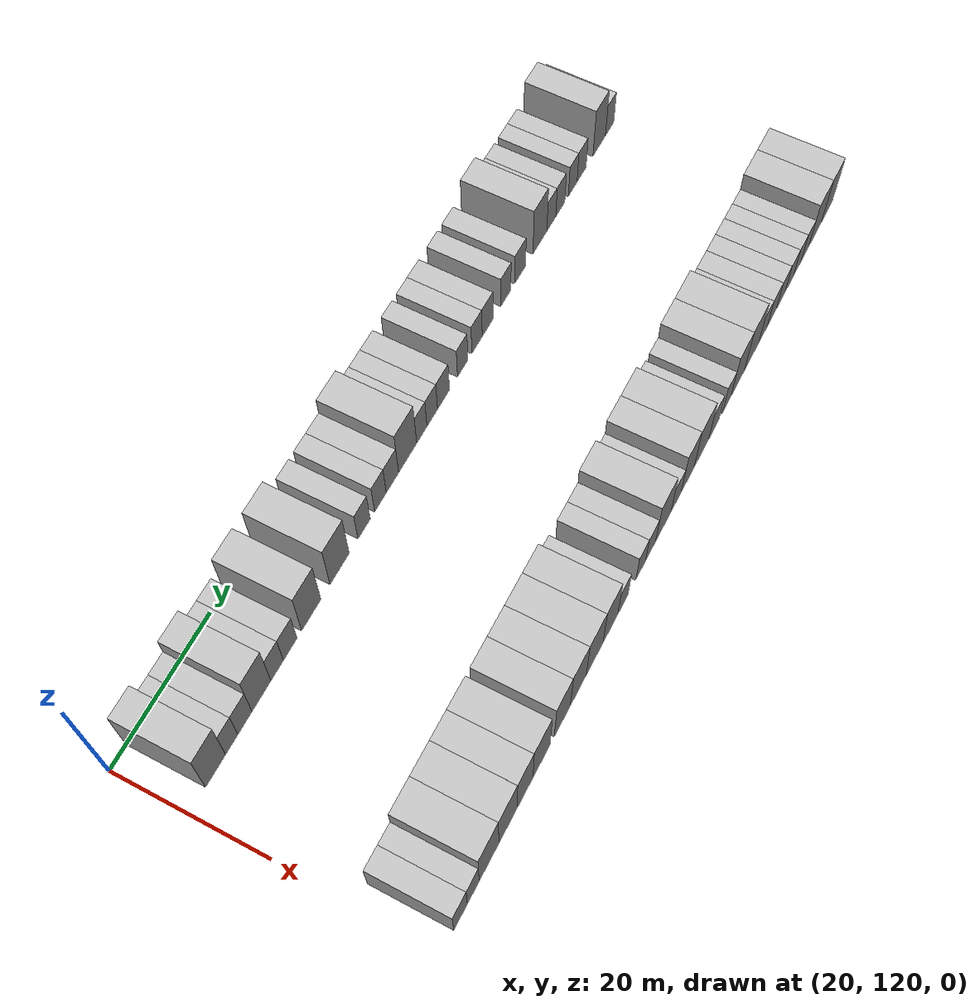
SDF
<sdf version="1.6">
 <world name="default">
  <model name="building_85">
   <static>1</static>
   <pose>25.0000 125.1959 0 0.000000 0.000000 0.000000</pose>
   <link name="link">
    <pose>0 0 4.50 0 0 0</pose>
    <collision name="collision"><geometry><box><size>10.0000 3.9432 9.0000</size></box></geometry></collision>
    <visual name="visual">
     <cast_shadows>0</cast_shadows>
     <geometry><box><size>10.0000 3.9432 9.0000</size></box></geometry>
     <material>
      <script>
       <uri>model://HANNAS_wall/materials/scripts</uri>
       <uri>model://HANNAS_wall/materials/textures</uri>
       <name>vrc/HANNAS_wall</name>
      </script>
     </material>
    </visual>
   </link>
  </model>
  <model name="building_86">
   <static>1</static>
   <pose>25.0000 128.3918 0 0.000000 0.000000 0.000000</pose>
   <link name="link">
    <pose>0 0 3.00 0 0 0</pose>
    <collision name="collision"><geometry><box><size>10.0000 2.4485 6.0000</size></box></geometry></collision>
    <visual name="visual">
     <cast_shadows>0</cast_shadows>
     <geometry><box><size>10.0000 2.4485 6.0000</size></box></geometry>
     <material>
      <script>
       <uri>model://HANNAS_wall/materials/scripts</uri>
       <uri>model://HANNAS_wall/materials/textures</uri>
       <name>vrc/HANNAS_wall</name>
      </script>
     </material>
    </visual>
   </link>
  </model>
  <model name="building_87">
   <static>1</static>
   <pose>25.0000 131.0483 0 0.000000 0.000000 0.000000</pose>
   <link name="link">
    <pose>0 0 3.00 0 0 0</pose>
    <collision name="collision"><geometry><box><size>10.0000 2.8646 6.0000</size></box></geometry></collision>
    <visual name="visual">
     <cast_shadows>0</cast_shadows>
     <geometry><box><size>10.0000 2.8646 6.0000</size></box></geometry>
     <material>
      <script>
       <uri>model://HANNAS_wall/materials/scripts</uri>
       <uri>model://HANNAS_wall/materials/textures</uri>
       <name>vrc/HANNAS_wall</name>
      </script>
     </material>
    </visual>
   </link>
  </model>
  <model name="building_88">
   <static>1</static>
   <pose>25.0000 134.4222 0 0.000000 0.000000 0.000000</pose>
   <link name="link">
    <pose>0 0 4.50 0 0 0</pose>
    <collision name="collision"><geometry><box><size>10.0000 3.8834 9.0000</size></box></geometry></collision>
    <visual name="visual">
     <cast_shadows>0</cast_shadows>
     <geometry><box><size>10.0000 3.8834 9.0000</size></box></geometry>
     <material>
      <script>
       <uri>model://HANNAS_wall/materials/scripts</uri>
       <uri>model://HANNAS_wall/materials/textures</uri>
       <name>vrc/HANNAS_wall</name>
      </script>
     </material>
    </visual>
   </link>
  </model>
  <model name="building_89">
   <static>1</static>
   <pose>25.0000 137.6720 0 0.000000 0.000000 0.000000</pose>
   <link name="link">
    <pose>0 0 3.00 0 0 0</pose>
    <collision name="collision"><geometry><box><size>10.0000 2.6161 6.0000</size></box></geometry></collision>
    <visual name="visual">
     <cast_shadows>0</cast_shadows>
     <geometry><box><size>10.0000 2.6161 6.0000</size></box></geometry>
     <material>
      <script>
       <uri>model://HANNAS_wall/materials/scripts</uri>
       <uri>model://HANNAS_wall/materials/textures</uri>
       <name>vrc/HANNAS_wall</name>
      </script>
     </material>
    </visual>
   </link>
  </model>
  <model name="building_90">
   <static>1</static>
   <pose>25.0000 140.4186 0 0.000000 0.000000 0.000000</pose>
   <link name="link">
    <pose>0 0 3.00 0 0 0</pose>
    <collision name="collision"><geometry><box><size>10.0000 2.8770 6.0000</size></box></geometry></collision>
    <visual name="visual">
     <cast_shadows>0</cast_shadows>
     <geometry><box><size>10.0000 2.8770 6.0000</size></box></geometry>
     <material>
      <script>
       <uri>model://HANNAS_wall/materials/scripts</uri>
       <uri>model://HANNAS_wall/materials/textures</uri>
       <name>vrc/HANNAS_wall</name>
      </script>
     </material>
    </visual>
   </link>
  </model>
  <model name="building_91">
   <static>1</static>
   <pose>25.0000 144.9298 0 0.000000 0.000000 0.000000</pose>
   <link name="link">
    <pose>0 0 4.50 0 0 0</pose>
    <collision name="collision"><geometry><box><size>10.0000 4.1455 9.0000</size></box></geometry></collision>
    <visual name="visual">
     <cast_shadows>0</cast_shadows>
     <geometry><box><size>10.0000 4.1455 9.0000</size></box></geometry>
     <material>
      <script>
       <uri>model://HANNAS_wall/materials/scripts</uri>
       <uri>model://HANNAS_wall/materials/textures</uri>
       <name>vrc/HANNAS_wall</name>
      </script>
     </material>
    </visual>
   </link>
  </model>
  <model name="building_92">
   <static>1</static>
   <pose>25.0000 151.1373 0 0.000000 0.000000 0.000000</pose>
   <link name="link">
    <pose>0 0 4.50 0 0 0</pose>
    <collision name="collision"><geometry><box><size>10.0000 4.2694 9.0000</size></box></geometry></collision>
    <visual name="visual">
     <cast_shadows>0</cast_shadows>
     <geometry><box><size>10.0000 4.2694 9.0000</size></box></geometry>
     <material>
      <script>
       <uri>model://HANNAS_wall/materials/scripts</uri>
       <uri>model://HANNAS_wall/materials/textures</uri>
       <name>vrc/HANNAS_wall</name>
      </script>
     </material>
    </visual>
   </link>
  </model>
  <model name="building_93">
   <static>1</static>
   <pose>25.0000 156.6735 0 0.000000 0.000000 0.000000</pose>
   <link name="link">
    <pose>0 0 3.00 0 0 0</pose>
    <collision name="collision"><geometry><box><size>10.0000 2.8031 6.0000</size></box></geometry></collision>
    <visual name="visual">
     <cast_shadows>0</cast_shadows>
     <geometry><box><size>10.0000 2.8031 6.0000</size></box></geometry>
     <material>
      <script>
       <uri>model://HANNAS_wall/materials/scripts</uri>
       <uri>model://HANNAS_wall/materials/textures</uri>
       <name>vrc/HANNAS_wall</name>
      </script>
     </material>
    </visual>
   </link>
  </model>
  <model name="building_94">
   <static>1</static>
   <pose>25.0000 160.4245 0 0.000000 0.000000 0.000000</pose>
   <link name="link">
    <pose>0 0 3.00 0 0 0</pose>
    <collision name="collision"><geometry><box><size>10.0000 2.6990 6.0000</size></box></geometry></collision>
    <visual name="visual">
     <cast_shadows>0</cast_shadows>
     <geometry><box><size>10.0000 2.6990 6.0000</size></box></geometry>
     <material>
      <script>
       <uri>model://HANNAS_wall/materials/scripts</uri>
       <uri>model://HANNAS_wall/materials/textures</uri>
       <name>vrc/HANNAS_wall</name>
      </script>
     </material>
    </visual>
   </link>
  </model>
  <model name="building_95">
   <static>1</static>
   <pose>25.0000 163.2224 0 0.000000 0.000000 0.000000</pose>
   <link name="link">
    <pose>0 0 3.00 0 0 0</pose>
    <collision name="collision"><geometry><box><size>10.0000 2.8968 6.0000</size></box></geometry></collision>
    <visual name="visual">
     <cast_shadows>0</cast_shadows>
     <geometry><box><size>10.0000 2.8968 6.0000</size></box></geometry>
     <material>
      <script>
       <uri>model://HANNAS_wall/materials/scripts</uri>
       <uri>model://HANNAS_wall/materials/textures</uri>
       <name>vrc/HANNAS_wall</name>
      </script>
     </material>
    </visual>
   </link>
  </model>
  <model name="building_96">
   <static>1</static>
   <pose>25.0000 166.8299 0 0.000000 0.000000 0.000000</pose>
   <link name="link">
    <pose>0 0 4.50 0 0 0</pose>
    <collision name="collision"><geometry><box><size>10.0000 4.3183 9.0000</size></box></geometry></collision>
    <visual name="visual">
     <cast_shadows>0</cast_shadows>
     <geometry><box><size>10.0000 4.3183 9.0000</size></box></geometry>
     <material>
      <script>
       <uri>model://HANNAS_wall/materials/scripts</uri>
       <uri>model://HANNAS_wall/materials/textures</uri>
       <name>vrc/HANNAS_wall</name>
      </script>
     </material>
    </visual>
   </link>
  </model>
  <model name="building_97">
   <static>1</static>
   <pose>25.0000 170.2335 0 0.000000 0.000000 0.000000</pose>
   <link name="link">
    <pose>0 0 3.00 0 0 0</pose>
    <collision name="collision"><geometry><box><size>10.0000 2.4889 6.0000</size></box></geometry></collision>
    <visual name="visual">
     <cast_shadows>0</cast_shadows>
     <geometry><box><size>10.0000 2.4889 6.0000</size></box></geometry>
     <material>
      <script>
       <uri>model://HANNAS_wall/materials/scripts</uri>
       <uri>model://HANNAS_wall/materials/textures</uri>
       <name>vrc/HANNAS_wall</name>
      </script>
     </material>
    </visual>
   </link>
  </model>
  <model name="building_98">
   <static>1</static>
   <pose>25.0000 172.7696 0 0.000000 0.000000 0.000000</pose>
   <link name="link">
    <pose>0 0 3.00 0 0 0</pose>
    <collision name="collision"><geometry><box><size>10.0000 2.5834 6.0000</size></box></geometry></collision>
    <visual name="visual">
     <cast_shadows>0</cast_shadows>
     <geometry><box><size>10.0000 2.5834 6.0000</size></box></geometry>
     <material>
      <script>
       <uri>model://HANNAS_wall/materials/scripts</uri>
       <uri>model://HANNAS_wall/materials/textures</uri>
       <name>vrc/HANNAS_wall</name>
      </script>
     </material>
    </visual>
   </link>
  </model>
  <model name="building_99">
   <static>1</static>
   <pose>25.0000 175.5461 0 0.000000 0.000000 0.000000</pose>
   <link name="link">
    <pose>0 0 3.00 0 0 0</pose>
    <collision name="collision"><geometry><box><size>10.0000 2.9696 6.0000</size></box></geometry></collision>
    <visual name="visual">
     <cast_shadows>0</cast_shadows>
     <geometry><box><size>10.0000 2.9696 6.0000</size></box></geometry>
     <material>
      <script>
       <uri>model://HANNAS_wall/materials/scripts</uri>
       <uri>model://HANNAS_wall/materials/textures</uri>
       <name>vrc/HANNAS_wall</name>
      </script>
     </material>
    </visual>
   </link>
  </model>
  <model name="building_100">
   <static>1</static>
   <pose>25.0000 180.3489 0 0.000000 0.000000 0.000000</pose>
   <link name="link">
    <pose>0 0 3.00 0 0 0</pose>
    <collision name="collision"><geometry><box><size>10.0000 2.6359 6.0000</size></box></geometry></collision>
    <visual name="visual">
     <cast_shadows>0</cast_shadows>
     <geometry><box><size>10.0000 2.6359 6.0000</size></box></geometry>
     <material>
      <script>
       <uri>model://HANNAS_wall/materials/scripts</uri>
       <uri>model://HANNAS_wall/materials/textures</uri>
       <name>vrc/HANNAS_wall</name>
      </script>
     </material>
    </visual>
   </link>
  </model>
  <model name="building_101">
   <static>1</static>
   <pose>25.0000 184.0029 0 0.000000 0.000000 0.000000</pose>
   <link name="link">
    <pose>0 0 3.00 0 0 0</pose>
    <collision name="collision"><geometry><box><size>10.0000 2.6721 6.0000</size></box></geometry></collision>
    <visual name="visual">
     <cast_shadows>0</cast_shadows>
     <geometry><box><size>10.0000 2.6721 6.0000</size></box></geometry>
     <material>
      <script>
       <uri>model://HANNAS_wall/materials/scripts</uri>
       <uri>model://HANNAS_wall/materials/textures</uri>
       <name>vrc/HANNAS_wall</name>
      </script>
     </material>
    </visual>
   </link>
  </model>
  <model name="building_102">
   <static>1</static>
   <pose>25.0000 186.7661 0 0.000000 0.000000 0.000000</pose>
   <link name="link">
    <pose>0 0 3.00 0 0 0</pose>
    <collision name="collision"><geometry><box><size>10.0000 2.8544 6.0000</size></box></geometry></collision>
    <visual name="visual">
     <cast_shadows>0</cast_shadows>
     <geometry><box><size>10.0000 2.8544 6.0000</size></box></geometry>
     <material>
      <script>
       <uri>model://HANNAS_wall/materials/scripts</uri>
       <uri>model://HANNAS_wall/materials/textures</uri>
       <name>vrc/HANNAS_wall</name>
      </script>
     </material>
    </visual>
   </link>
  </model>
  <model name="building_103">
   <static>1</static>
   <pose>25.0000 191.5393 0 0.000000 0.000000 0.000000</pose>
   <link name="link">
    <pose>0 0 3.00 0 0 0</pose>
    <collision name="collision"><geometry><box><size>10.0000 2.6919 6.0000</size></box></geometry></collision>
    <visual name="visual">
     <cast_shadows>0</cast_shadows>
     <geometry><box><size>10.0000 2.6919 6.0000</size></box></geometry>
     <material>
      <script>
       <uri>model://HANNAS_wall/materials/scripts</uri>
       <uri>model://HANNAS_wall/materials/textures</uri>
       <name>vrc/HANNAS_wall</name>
      </script>
     </material>
    </visual>
   </link>
  </model>
  <model name="building_104">
   <static>1</static>
   <pose>25.0000 195.3610 0 0.000000 0.000000 0.000000</pose>
   <link name="link">
    <pose>0 0 3.00 0 0 0</pose>
    <collision name="collision"><geometry><box><size>10.0000 2.9515 6.0000</size></box></geometry></collision>
    <visual name="visual">
     <cast_shadows>0</cast_shadows>
     <geometry><box><size>10.0000 2.9515 6.0000</size></box></geometry>
     <material>
      <script>
       <uri>model://HANNAS_wall/materials/scripts</uri>
       <uri>model://HANNAS_wall/materials/textures</uri>
       <name>vrc/HANNAS_wall</name>
      </script>
     </material>
    </visual>
   </link>
  </model>
  <model name="building_105">
   <static>1</static>
   <pose>25.0000 200.7518 0 0.000000 0.000000 0.000000</pose>
   <link name="link">
    <pose>0 0 4.50 0 0 0</pose>
    <collision name="collision"><geometry><box><size>10.0000 3.8301 9.0000</size></box></geometry></collision>
    <visual name="visual">
     <cast_shadows>0</cast_shadows>
     <geometry><box><size>10.0000 3.8301 9.0000</size></box></geometry>
     <material>
      <script>
       <uri>model://HANNAS_wall/materials/scripts</uri>
       <uri>model://HANNAS_wall/materials/textures</uri>
       <name>vrc/HANNAS_wall</name>
      </script>
     </material>
    </visual>
   </link>
  </model>
  <model name="building_106">
   <static>1</static>
   <pose>25.0000 203.9179 0 0.000000 0.000000 0.000000</pose>
   <link name="link">
    <pose>0 0 3.00 0 0 0</pose>
    <collision name="collision"><geometry><box><size>10.0000 2.5021 6.0000</size></box></geometry></collision>
    <visual name="visual">
     <cast_shadows>0</cast_shadows>
     <geometry><box><size>10.0000 2.5021 6.0000</size></box></geometry>
     <material>
      <script>
       <uri>model://HANNAS_wall/materials/scripts</uri>
       <uri>model://HANNAS_wall/materials/textures</uri>
       <name>vrc/HANNAS_wall</name>
      </script>
     </material>
    </visual>
   </link>
  </model>
  <model name="building_107">
   <static>1</static>
   <pose>25.0000 206.4451 0 0.000000 0.000000 0.000000</pose>
   <link name="link">
    <pose>0 0 3.00 0 0 0</pose>
    <collision name="collision"><geometry><box><size>10.0000 2.5524 6.0000</size></box></geometry></collision>
    <visual name="visual">
     <cast_shadows>0</cast_shadows>
     <geometry><box><size>10.0000 2.5524 6.0000</size></box></geometry>
     <material>
      <script>
       <uri>model://HANNAS_wall/materials/scripts</uri>
       <uri>model://HANNAS_wall/materials/textures</uri>
       <name>vrc/HANNAS_wall</name>
      </script>
     </material>
    </visual>
   </link>
  </model>
  <model name="building_108">
   <static>1</static>
   <pose>25.0000 209.9662 0 0.000000 0.000000 0.000000</pose>
   <link name="link">
    <pose>0 0 3.00 0 0 0</pose>
    <collision name="collision"><geometry><box><size>10.0000 2.4898 6.0000</size></box></geometry></collision>
    <visual name="visual">
     <cast_shadows>0</cast_shadows>
     <geometry><box><size>10.0000 2.4898 6.0000</size></box></geometry>
     <material>
      <script>
       <uri>model://HANNAS_wall/materials/scripts</uri>
       <uri>model://HANNAS_wall/materials/textures</uri>
       <name>vrc/HANNAS_wall</name>
      </script>
     </material>
    </visual>
   </link>
  </model>
  <model name="building_109">
   <static>1</static>
   <pose>25.0000 212.5157 0 0.000000 0.000000 0.000000</pose>
   <link name="link">
    <pose>0 0 3.00 0 0 0</pose>
    <collision name="collision"><geometry><box><size>10.0000 2.6093 6.0000</size></box></geometry></collision>
    <visual name="visual">
     <cast_shadows>0</cast_shadows>
     <geometry><box><size>10.0000 2.6093 6.0000</size></box></geometry>
     <material>
      <script>
       <uri>model://HANNAS_wall/materials/scripts</uri>
       <uri>model://HANNAS_wall/materials/textures</uri>
       <name>vrc/HANNAS_wall</name>
      </script>
     </material>
    </visual>
   </link>
  </model>
  <model name="building_110">
   <static>1</static>
   <pose>25.0000 217.6581 0 0.000000 0.000000 0.000000</pose>
   <link name="link">
    <pose>0 0 4.50 0 0 0</pose>
    <collision name="collision"><geometry><box><size>10.0000 3.6754 9.0000</size></box></geometry></collision>
    <visual name="visual">
     <cast_shadows>0</cast_shadows>
     <geometry><box><size>10.0000 3.6754 9.0000</size></box></geometry>
     <material>
      <script>
       <uri>model://HANNAS_wall/materials/scripts</uri>
       <uri>model://HANNAS_wall/materials/textures</uri>
       <name>vrc/HANNAS_wall</name>
      </script>
     </material>
    </visual>
   </link>
  </model>
  <model name="building_111">
   <static>1</static>
   <pose>25.0000 220.7477 0 0.000000 0.000000 0.000000</pose>
   <link name="link">
    <pose>0 0 3.00 0 0 0</pose>
    <collision name="collision"><geometry><box><size>10.0000 2.5037 6.0000</size></box></geometry></collision>
    <visual name="visual">
     <cast_shadows>0</cast_shadows>
     <geometry><box><size>10.0000 2.5037 6.0000</size></box></geometry>
     <material>
      <script>
       <uri>model://HANNAS_wall/materials/scripts</uri>
       <uri>model://HANNAS_wall/materials/textures</uri>
       <name>vrc/HANNAS_wall</name>
      </script>
     </material>
    </visual>
   </link>
  </model>
  <model name="building_198">
   <static>1</static>
   <pose>55.0000 123.8505 0 0.000000 0.000000 0.000000</pose>
   <link name="link">
    <pose>0 0 3.00 0 0 0</pose>
    <collision name="collision"><geometry><box><size>10.0000 2.8934 6.0000</size></box></geometry></collision>
    <visual name="visual">
     <cast_shadows>0</cast_shadows>
     <geometry><box><size>10.0000 2.8934 6.0000</size></box></geometry>
     <material>
      <script>
       <uri>model://HANNAS_wall/materials/scripts</uri>
       <uri>model://HANNAS_wall/materials/textures</uri>
       <name>vrc/HANNAS_wall</name>
      </script>
     </material>
    </visual>
   </link>
  </model>
  <model name="building_199">
   <static>1</static>
   <pose>55.0000 126.5776 0 0.000000 0.000000 0.000000</pose>
   <link name="link">
    <pose>0 0 3.00 0 0 0</pose>
    <collision name="collision"><geometry><box><size>10.0000 2.5608 6.0000</size></box></geometry></collision>
    <visual name="visual">
     <cast_shadows>0</cast_shadows>
     <geometry><box><size>10.0000 2.5608 6.0000</size></box></geometry>
     <material>
      <script>
       <uri>model://HANNAS_wall/materials/scripts</uri>
       <uri>model://HANNAS_wall/materials/textures</uri>
       <name>vrc/HANNAS_wall</name>
      </script>
     </material>
    </visual>
   </link>
  </model>
  <model name="building_200">
   <static>1</static>
   <pose>55.0000 130.0183 0 0.000000 0.000000 0.000000</pose>
   <link name="link">
    <pose>0 0 4.50 0 0 0</pose>
    <collision name="collision"><geometry><box><size>10.0000 4.3205 9.0000</size></box></geometry></collision>
    <visual name="visual">
     <cast_shadows>0</cast_shadows>
     <geometry><box><size>10.0000 4.3205 9.0000</size></box></geometry>
     <material>
      <script>
       <uri>model://HANNAS_wall/materials/scripts</uri>
       <uri>model://HANNAS_wall/materials/textures</uri>
       <name>vrc/HANNAS_wall</name>
      </script>
     </material>
    </visual>
   </link>
  </model>
  <model name="building_201">
   <static>1</static>
   <pose>55.0000 134.2432 0 0.000000 0.000000 0.000000</pose>
   <link name="link">
    <pose>0 0 4.50 0 0 0</pose>
    <collision name="collision"><geometry><box><size>10.0000 4.1293 9.0000</size></box></geometry></collision>
    <visual name="visual">
     <cast_shadows>0</cast_shadows>
     <geometry><box><size>10.0000 4.1293 9.0000</size></box></geometry>
     <material>
      <script>
       <uri>model://HANNAS_wall/materials/scripts</uri>
       <uri>model://HANNAS_wall/materials/textures</uri>
       <name>vrc/HANNAS_wall</name>
      </script>
     </material>
    </visual>
   </link>
  </model>
  <model name="building_202">
   <static>1</static>
   <pose>55.0000 138.1237 0 0.000000 0.000000 0.000000</pose>
   <link name="link">
    <pose>0 0 4.50 0 0 0</pose>
    <collision name="collision"><geometry><box><size>10.0000 3.6316 9.0000</size></box></geometry></collision>
    <visual name="visual">
     <cast_shadows>0</cast_shadows>
     <geometry><box><size>10.0000 3.6316 9.0000</size></box></geometry>
     <material>
      <script>
       <uri>model://HANNAS_wall/materials/scripts</uri>
       <uri>model://HANNAS_wall/materials/textures</uri>
       <name>vrc/HANNAS_wall</name>
      </script>
     </material>
    </visual>
   </link>
  </model>
  <model name="building_203">
   <static>1</static>
   <pose>55.0000 141.9427 0 0.000000 0.000000 0.000000</pose>
   <link name="link">
    <pose>0 0 4.50 0 0 0</pose>
    <collision name="collision"><geometry><box><size>10.0000 4.0064 9.0000</size></box></geometry></collision>
    <visual name="visual">
     <cast_shadows>0</cast_shadows>
     <geometry><box><size>10.0000 4.0064 9.0000</size></box></geometry>
     <material>
      <script>
       <uri>model://HANNAS_wall/materials/scripts</uri>
       <uri>model://HANNAS_wall/materials/textures</uri>
       <name>vrc/HANNAS_wall</name>
      </script>
     </material>
    </visual>
   </link>
  </model>
  <model name="building_204">
   <static>1</static>
   <pose>55.0000 146.8607 0 0.000000 0.000000 0.000000</pose>
   <link name="link">
    <pose>0 0 4.50 0 0 0</pose>
    <collision name="collision"><geometry><box><size>10.0000 3.8296 9.0000</size></box></geometry></collision>
    <visual name="visual">
     <cast_shadows>0</cast_shadows>
     <geometry><box><size>10.0000 3.8296 9.0000</size></box></geometry>
     <material>
      <script>
       <uri>model://HANNAS_wall/materials/scripts</uri>
       <uri>model://HANNAS_wall/materials/textures</uri>
       <name>vrc/HANNAS_wall</name>
      </script>
     </material>
    </visual>
   </link>
  </model>
  <model name="building_205">
   <static>1</static>
   <pose>55.0000 150.7323 0 0.000000 0.000000 0.000000</pose>
   <link name="link">
    <pose>0 0 4.50 0 0 0</pose>
    <collision name="collision"><geometry><box><size>10.0000 3.9137 9.0000</size></box></geometry></collision>
    <visual name="visual">
     <cast_shadows>0</cast_shadows>
     <geometry><box><size>10.0000 3.9137 9.0000</size></box></geometry>
     <material>
      <script>
       <uri>model://HANNAS_wall/materials/scripts</uri>
       <uri>model://HANNAS_wall/materials/textures</uri>
       <name>vrc/HANNAS_wall</name>
      </script>
     </material>
    </visual>
   </link>
  </model>
  <model name="building_206">
   <static>1</static>
   <pose>55.0000 154.7420 0 0.000000 0.000000 0.000000</pose>
   <link name="link">
    <pose>0 0 4.50 0 0 0</pose>
    <collision name="collision"><geometry><box><size>10.0000 4.1056 9.0000</size></box></geometry></collision>
    <visual name="visual">
     <cast_shadows>0</cast_shadows>
     <geometry><box><size>10.0000 4.1056 9.0000</size></box></geometry>
     <material>
      <script>
       <uri>model://HANNAS_wall/materials/scripts</uri>
       <uri>model://HANNAS_wall/materials/textures</uri>
       <name>vrc/HANNAS_wall</name>
      </script>
     </material>
    </visual>
   </link>
  </model>
  <model name="building_207">
   <static>1</static>
   <pose>55.0000 158.6765 0 0.000000 0.000000 0.000000</pose>
   <link name="link">
    <pose>0 0 4.50 0 0 0</pose>
    <collision name="collision"><geometry><box><size>10.0000 3.7635 9.0000</size></box></geometry></collision>
    <visual name="visual">
     <cast_shadows>0</cast_shadows>
     <geometry><box><size>10.0000 3.7635 9.0000</size></box></geometry>
     <material>
      <script>
       <uri>model://HANNAS_wall/materials/scripts</uri>
       <uri>model://HANNAS_wall/materials/textures</uri>
       <name>vrc/HANNAS_wall</name>
      </script>
     </material>
    </visual>
   </link>
  </model>
  <model name="building_208">
   <static>1</static>
   <pose>55.0000 161.8825 0 0.000000 0.000000 0.000000</pose>
   <link name="link">
    <pose>0 0 3.00 0 0 0</pose>
    <collision name="collision"><geometry><box><size>10.0000 2.6483 6.0000</size></box></geometry></collision>
    <visual name="visual">
     <cast_shadows>0</cast_shadows>
     <geometry><box><size>10.0000 2.6483 6.0000</size></box></geometry>
     <material>
      <script>
       <uri>model://HANNAS_wall/materials/scripts</uri>
       <uri>model://HANNAS_wall/materials/textures</uri>
       <name>vrc/HANNAS_wall</name>
      </script>
     </material>
    </visual>
   </link>
  </model>
  <model name="building_209">
   <static>1</static>
   <pose>55.0000 166.4812 0 0.000000 0.000000 0.000000</pose>
   <link name="link">
    <pose>0 0 3.00 0 0 0</pose>
    <collision name="collision"><geometry><box><size>10.0000 2.5491 6.0000</size></box></geometry></collision>
    <visual name="visual">
     <cast_shadows>0</cast_shadows>
     <geometry><box><size>10.0000 2.5491 6.0000</size></box></geometry>
     <material>
      <script>
       <uri>model://HANNAS_wall/materials/scripts</uri>
       <uri>model://HANNAS_wall/materials/textures</uri>
       <name>vrc/HANNAS_wall</name>
      </script>
     </material>
    </visual>
   </link>
  </model>
  <model name="building_210">
   <static>1</static>
   <pose>55.0000 169.0821 0 0.000000 0.000000 0.000000</pose>
   <link name="link">
    <pose>0 0 3.00 0 0 0</pose>
    <collision name="collision"><geometry><box><size>10.0000 2.6527 6.0000</size></box></geometry></collision>
    <visual name="visual">
     <cast_shadows>0</cast_shadows>
     <geometry><box><size>10.0000 2.6527 6.0000</size></box></geometry>
     <material>
      <script>
       <uri>model://HANNAS_wall/materials/scripts</uri>
       <uri>model://HANNAS_wall/materials/textures</uri>
       <name>vrc/HANNAS_wall</name>
      </script>
     </material>
    </visual>
   </link>
  </model>
  <model name="building_211">
   <static>1</static>
   <pose>55.0000 172.4935 0 0.000000 0.000000 0.000000</pose>
   <link name="link">
    <pose>0 0 4.50 0 0 0</pose>
    <collision name="collision"><geometry><box><size>10.0000 4.1701 9.0000</size></box></geometry></collision>
    <visual name="visual">
     <cast_shadows>0</cast_shadows>
     <geometry><box><size>10.0000 4.1701 9.0000</size></box></geometry>
     <material>
      <script>
       <uri>model://HANNAS_wall/materials/scripts</uri>
       <uri>model://HANNAS_wall/materials/textures</uri>
       <name>vrc/HANNAS_wall</name>
      </script>
     </material>
    </visual>
   </link>
  </model>
  <model name="building_212">
   <static>1</static>
   <pose>55.0000 175.9554 0 0.000000 0.000000 0.000000</pose>
   <link name="link">
    <pose>0 0 3.00 0 0 0</pose>
    <collision name="collision"><geometry><box><size>10.0000 2.7536 6.0000</size></box></geometry></collision>
    <visual name="visual">
     <cast_shadows>0</cast_shadows>
     <geometry><box><size>10.0000 2.7536 6.0000</size></box></geometry>
     <material>
      <script>
       <uri>model://HANNAS_wall/materials/scripts</uri>
       <uri>model://HANNAS_wall/materials/textures</uri>
       <name>vrc/HANNAS_wall</name>
      </script>
     </material>
    </visual>
   </link>
  </model>
  <model name="building_213">
   <static>1</static>
   <pose>55.0000 179.1514 0 0.000000 0.000000 0.000000</pose>
   <link name="link">
    <pose>0 0 4.50 0 0 0</pose>
    <collision name="collision"><geometry><box><size>10.0000 3.6384 9.0000</size></box></geometry></collision>
    <visual name="visual">
     <cast_shadows>0</cast_shadows>
     <geometry><box><size>10.0000 3.6384 9.0000</size></box></geometry>
     <material>
      <script>
       <uri>model://HANNAS_wall/materials/scripts</uri>
       <uri>model://HANNAS_wall/materials/textures</uri>
       <name>vrc/HANNAS_wall</name>
      </script>
     </material>
    </visual>
   </link>
  </model>
  <model name="building_214">
   <static>1</static>
   <pose>55.0000 183.0307 0 0.000000 0.000000 0.000000</pose>
   <link name="link">
    <pose>0 0 4.50 0 0 0</pose>
    <collision name="collision"><geometry><box><size>10.0000 4.1203 9.0000</size></box></geometry></collision>
    <visual name="visual">
     <cast_shadows>0</cast_shadows>
     <geometry><box><size>10.0000 4.1203 9.0000</size></box></geometry>
     <material>
      <script>
       <uri>model://HANNAS_wall/materials/scripts</uri>
       <uri>model://HANNAS_wall/materials/textures</uri>
       <name>vrc/HANNAS_wall</name>
      </script>
     </material>
    </visual>
   </link>
  </model>
  <model name="building_215">
   <static>1</static>
   <pose>55.0000 186.5719 0 0.000000 0.000000 0.000000</pose>
   <link name="link">
    <pose>0 0 3.00 0 0 0</pose>
    <collision name="collision"><geometry><box><size>10.0000 2.9622 6.0000</size></box></geometry></collision>
    <visual name="visual">
     <cast_shadows>0</cast_shadows>
     <geometry><box><size>10.0000 2.9622 6.0000</size></box></geometry>
     <material>
      <script>
       <uri>model://HANNAS_wall/materials/scripts</uri>
       <uri>model://HANNAS_wall/materials/textures</uri>
       <name>vrc/HANNAS_wall</name>
      </script>
     </material>
    </visual>
   </link>
  </model>
  <model name="building_216">
   <static>1</static>
   <pose>55.0000 190.2983 0 0.000000 0.000000 0.000000</pose>
   <link name="link">
    <pose>0 0 3.00 0 0 0</pose>
    <collision name="collision"><geometry><box><size>10.0000 2.4905 6.0000</size></box></geometry></collision>
    <visual name="visual">
     <cast_shadows>0</cast_shadows>
     <geometry><box><size>10.0000 2.4905 6.0000</size></box></geometry>
     <material>
      <script>
       <uri>model://HANNAS_wall/materials/scripts</uri>
       <uri>model://HANNAS_wall/materials/textures</uri>
       <name>vrc/HANNAS_wall</name>
      </script>
     </material>
    </visual>
   </link>
  </model>
  <model name="building_217">
   <static>1</static>
   <pose>55.0000 193.5188 0 0.000000 0.000000 0.000000</pose>
   <link name="link">
    <pose>0 0 4.50 0 0 0</pose>
    <collision name="collision"><geometry><box><size>10.0000 3.9505 9.0000</size></box></geometry></collision>
    <visual name="visual">
     <cast_shadows>0</cast_shadows>
     <geometry><box><size>10.0000 3.9505 9.0000</size></box></geometry>
     <material>
      <script>
       <uri>model://HANNAS_wall/materials/scripts</uri>
       <uri>model://HANNAS_wall/materials/textures</uri>
       <name>vrc/HANNAS_wall</name>
      </script>
     </material>
    </visual>
   </link>
  </model>
  <model name="building_218">
   <static>1</static>
   <pose>55.0000 197.6624 0 0.000000 0.000000 0.000000</pose>
   <link name="link">
    <pose>0 0 4.50 0 0 0</pose>
    <collision name="collision"><geometry><box><size>10.0000 4.3367 9.0000</size></box></geometry></collision>
    <visual name="visual">
     <cast_shadows>0</cast_shadows>
     <geometry><box><size>10.0000 4.3367 9.0000</size></box></geometry>
     <material>
      <script>
       <uri>model://HANNAS_wall/materials/scripts</uri>
       <uri>model://HANNAS_wall/materials/textures</uri>
       <name>vrc/HANNAS_wall</name>
      </script>
     </material>
    </visual>
   </link>
  </model>
  <model name="building_219">
   <static>1</static>
   <pose>55.0000 201.1178 0 0.000000 0.000000 0.000000</pose>
   <link name="link">
    <pose>0 0 3.00 0 0 0</pose>
    <collision name="collision"><geometry><box><size>10.0000 2.5742 6.0000</size></box></geometry></collision>
    <visual name="visual">
     <cast_shadows>0</cast_shadows>
     <geometry><box><size>10.0000 2.5742 6.0000</size></box></geometry>
     <material>
      <script>
       <uri>model://HANNAS_wall/materials/scripts</uri>
       <uri>model://HANNAS_wall/materials/textures</uri>
       <name>vrc/HANNAS_wall</name>
      </script>
     </material>
    </visual>
   </link>
  </model>
  <model name="building_220">
   <static>1</static>
   <pose>55.0000 203.8425 0 0.000000 0.000000 0.000000</pose>
   <link name="link">
    <pose>0 0 3.00 0 0 0</pose>
    <collision name="collision"><geometry><box><size>10.0000 2.8753 6.0000</size></box></geometry></collision>
    <visual name="visual">
     <cast_shadows>0</cast_shadows>
     <geometry><box><size>10.0000 2.8753 6.0000</size></box></geometry>
     <material>
      <script>
       <uri>model://HANNAS_wall/materials/scripts</uri>
       <uri>model://HANNAS_wall/materials/textures</uri>
       <name>vrc/HANNAS_wall</name>
      </script>
     </material>
    </visual>
   </link>
  </model>
  <model name="building_221">
   <static>1</static>
   <pose>55.0000 206.5991 0 0.000000 0.000000 0.000000</pose>
   <link name="link">
    <pose>0 0 3.00 0 0 0</pose>
    <collision name="collision"><geometry><box><size>10.0000 2.6380 6.0000</size></box></geometry></collision>
    <visual name="visual">
     <cast_shadows>0</cast_shadows>
     <geometry><box><size>10.0000 2.6380 6.0000</size></box></geometry>
     <material>
      <script>
       <uri>model://HANNAS_wall/materials/scripts</uri>
       <uri>model://HANNAS_wall/materials/textures</uri>
       <name>vrc/HANNAS_wall</name>
      </script>
     </material>
    </visual>
   </link>
  </model>
  <model name="building_222">
   <static>1</static>
   <pose>55.0000 209.2380 0 0.000000 0.000000 0.000000</pose>
   <link name="link">
    <pose>0 0 3.00 0 0 0</pose>
    <collision name="collision"><geometry><box><size>10.0000 2.6396 6.0000</size></box></geometry></collision>
    <visual name="visual">
     <cast_shadows>0</cast_shadows>
     <geometry><box><size>10.0000 2.6396 6.0000</size></box></geometry>
     <material>
      <script>
       <uri>model://HANNAS_wall/materials/scripts</uri>
       <uri>model://HANNAS_wall/materials/textures</uri>
       <name>vrc/HANNAS_wall</name>
      </script>
     </material>
    </visual>
   </link>
  </model>
  <model name="building_223">
   <static>1</static>
   <pose>55.0000 211.7752 0 0.000000 0.000000 0.000000</pose>
   <link name="link">
    <pose>0 0 3.00 0 0 0</pose>
    <collision name="collision"><geometry><box><size>10.0000 2.4350 6.0000</size></box></geometry></collision>
    <visual name="visual">
     <cast_shadows>0</cast_shadows>
     <geometry><box><size>10.0000 2.4350 6.0000</size></box></geometry>
     <material>
      <script>
       <uri>model://HANNAS_wall/materials/scripts</uri>
       <uri>model://HANNAS_wall/materials/textures</uri>
       <name>vrc/HANNAS_wall</name>
      </script>
     </material>
    </visual>
   </link>
  </model>
  <model name="building_224">
   <static>1</static>
   <pose>55.0000 214.2041 0 0.000000 0.000000 0.000000</pose>
   <link name="link">
    <pose>0 0 3.00 0 0 0</pose>
    <collision name="collision"><geometry><box><size>10.0000 2.4227 6.0000</size></box></geometry></collision>
    <visual name="visual">
     <cast_shadows>0</cast_shadows>
     <geometry><box><size>10.0000 2.4227 6.0000</size></box></geometry>
     <material>
      <script>
       <uri>model://HANNAS_wall/materials/scripts</uri>
       <uri>model://HANNAS_wall/materials/textures</uri>
       <name>vrc/HANNAS_wall</name>
      </script>
     </material>
    </visual>
   </link>
  </model>
  <model name="building_225">
   <static>1</static>
   <pose>55.0000 217.5163 0 0.000000 0.000000 0.000000</pose>
   <link name="link">
    <pose>0 0 4.50 0 0 0</pose>
    <collision name="collision"><geometry><box><size>10.0000 4.2018 9.0000</size></box></geometry></collision>
    <visual name="visual">
     <cast_shadows>0</cast_shadows>
     <geometry><box><size>10.0000 4.2018 9.0000</size></box></geometry>
     <material>
      <script>
       <uri>model://HANNAS_wall/materials/scripts</uri>
       <uri>model://HANNAS_wall/materials/textures</uri>
       <name>vrc/HANNAS_wall</name>
      </script>
     </material>
    </visual>
   </link>
  </model>
  <model name="building_226">
   <static>1</static>
   <pose>55.0000 221.4895 0 0.000000 0.000000 0.000000</pose>
   <link name="link">
    <pose>0 0 4.50 0 0 0</pose>
    <collision name="collision"><geometry><box><size>10.0000 3.7447 9.0000</size></box></geometry></collision>
    <visual name="visual">
     <cast_shadows>0</cast_shadows>
     <geometry><box><size>10.0000 3.7447 9.0000</size></box></geometry>
     <material>
      <script>
       <uri>model://HANNAS_wall/materials/scripts</uri>
       <uri>model://HANNAS_wall/materials/textures</uri>
       <name>vrc/HANNAS_wall</name>
      </script>
     </material>
    </visual>
   </link>
  </model>
 </world>
</sdf>
